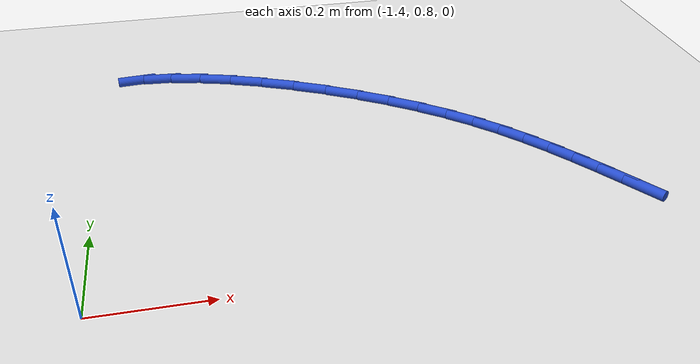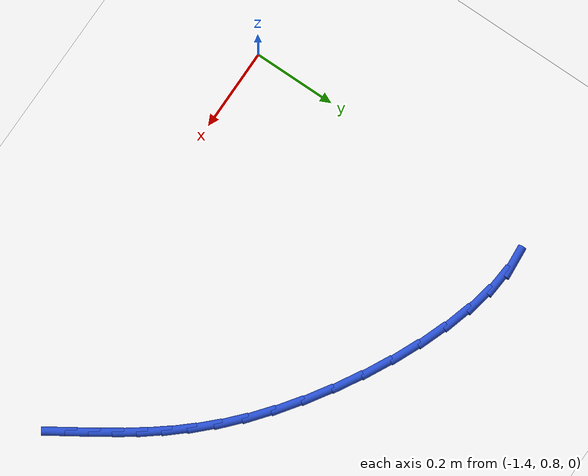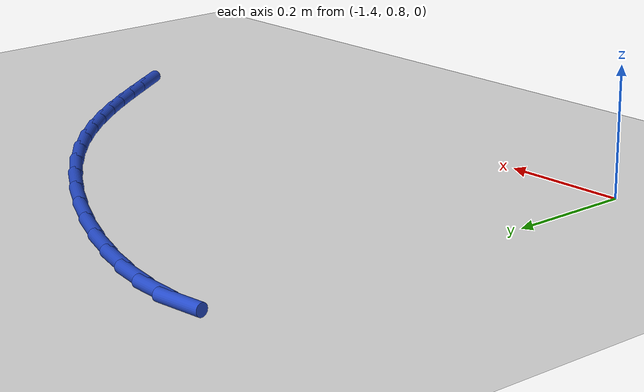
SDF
<sdf version="1.6">
 <world name="default">
  <model name="ground_plane">
   <static>1</static>
   <link name="link">
    <collision name="collision">
     <geometry><plane><normal>0 0 1</normal><size>100 100</size></plane></geometry>
     <surface><friction><ode><mu>100</mu><mu2>50</mu2></ode></friction></surface>
    </collision>
    <visual name="visual">
     <cast_shadows>0</cast_shadows>
     <geometry><plane><normal>0 0 1</normal><size>100 100</size></plane></geometry>
     <material>
      <script><uri>file://media/materials/scripts/gazebo.material</uri><name>Gazebo/WhiteGlow</name></script>
     </material>
    </visual>
   </link>
  </model>
  <model name="line">
   <link name="link_19">
    <pose>-0.44059486940551335 0.9225756538042263 0.01 0 1.57 -0.9933077386441407</pose>
    <collision name="collision">
     <geometry><cylinder><radius>0.01</radius><length>0.08</length></cylinder></geometry>
    </collision>
    <visual name="visual">
     <material>
      <script><name>Gazebo/Blue</name><uri>file://media/materials/scripts/gazebo.material</uri></script>
     </material>
     <geometry><cylinder><radius>0.01</radius><length>0.08</length></cylinder></geometry>
    </visual>
   </link>
   <link name="link_20">
    <pose>-0.46901064681831384 0.9661858983728185 0.01 0 1.57 -0.9850512075724858</pose>
    <collision name="collision">
     <geometry><cylinder><radius>0.01</radius><length>0.08</length></cylinder></geometry>
    </collision>
    <visual name="visual">
     <material>
      <script><name>Gazebo/Blue</name><uri>file://media/materials/scripts/gazebo.material</uri></script>
     </material>
     <geometry><cylinder><radius>0.01</radius><length>0.08</length></cylinder></geometry>
    </visual>
   </link>
   <link name="link_21">
    <pose>-0.4979193131147216 1.0097617166299877 0.01 0 1.57 -0.9647996219319948</pose>
    <collision name="collision">
     <geometry><cylinder><radius>0.01</radius><length>0.08</length></cylinder></geometry>
    </collision>
    <visual name="visual">
     <material>
      <script><name>Gazebo/Blue</name><uri>file://media/materials/scripts/gazebo.material</uri></script>
     </material>
     <geometry><cylinder><radius>0.01</radius><length>0.08</length></cylinder></geometry>
    </visual>
   </link>
   <link name="link_22">
    <pose>-0.5280503535728575 1.0532423195550304 0.01 0 1.57 -0.933387570112398</pose>
    <collision name="collision">
     <geometry><cylinder><radius>0.01</radius><length>0.08</length></cylinder></geometry>
    </collision>
    <visual name="visual">
     <material>
      <script><name>Gazebo/Blue</name><uri>file://media/materials/scripts/gazebo.material</uri></script>
     </material>
     <geometry><cylinder><radius>0.01</radius><length>0.08</length></cylinder></geometry>
    </visual>
   </link>
   <link name="link_23">
    <pose>-0.5601332534708434 1.0965669181272437 0.01 0 1.57 -0.8921354442786551</pose>
    <collision name="collision">
     <geometry><cylinder><radius>0.01</radius><length>0.08</length></cylinder></geometry>
    </collision>
    <visual name="visual">
     <material>
      <script><name>Gazebo/Blue</name><uri>file://media/materials/scripts/gazebo.material</uri></script>
     </material>
     <geometry><cylinder><radius>0.01</radius><length>0.08</length></cylinder></geometry>
    </visual>
   </link>
   <link name="link_24">
    <pose>-0.5948974980868004 1.1396747233259235 0.01 0 1.57 -0.8428022339938956</pose>
    <collision name="collision">
     <geometry><cylinder><radius>0.01</radius><length>0.08</length></cylinder></geometry>
    </collision>
    <visual name="visual">
     <material>
      <script><name>Gazebo/Blue</name><uri>file://media/materials/scripts/gazebo.material</uri></script>
     </material>
     <geometry><cylinder><radius>0.01</radius><length>0.08</length></cylinder></geometry>
    </visual>
   </link>
   <link name="link_25">
    <pose>-0.6330725726988508 1.1825049461303678 0.01 0 1.57 -0.7874788966688654</pose>
    <collision name="collision">
     <geometry><cylinder><radius>0.01</radius><length>0.08</length></cylinder></geometry>
    </collision>
    <visual name="visual">
     <material>
      <script><name>Gazebo/Blue</name><uri>file://media/materials/scripts/gazebo.material</uri></script>
     </material>
     <geometry><cylinder><radius>0.01</radius><length>0.08</length></cylinder></geometry>
    </visual>
   </link>
   <link name="link_26">
    <pose>-0.6753879625851154 1.2249967975198726 0.01 0 1.57 -0.7284189088602177</pose>
    <collision name="collision">
     <geometry><cylinder><radius>0.01</radius><length>0.08</length></cylinder></geometry>
    </collision>
    <visual name="visual">
     <material>
      <script><name>Gazebo/Blue</name><uri>file://media/materials/scripts/gazebo.material</uri></script>
     </material>
     <geometry><cylinder><radius>0.01</radius><length>0.08</length></cylinder></geometry>
    </visual>
   </link>
   <link name="link_27">
    <pose>-0.7225731530237162 1.2670894884737347 0.01 0 1.57 -0.6684847782224723</pose>
    <collision name="collision">
     <geometry><cylinder><radius>0.01</radius><length>0.08</length></cylinder></geometry>
    </collision>
    <visual name="visual">
     <material>
      <script><name>Gazebo/Blue</name><uri>file://media/materials/scripts/gazebo.material</uri></script>
     </material>
     <geometry><cylinder><radius>0.01</radius><length>0.08</length></cylinder></geometry>
    </visual>
   </link>
   <link name="link_28">
    <pose>-0.7752221834271208 1.3086712111539796 0.01 0 1.57 -0.6135340071690958</pose>
    <collision name="collision">
     <geometry><cylinder><radius>0.01</radius><length>0.08</length></cylinder></geometry>
    </collision>
    <visual name="visual">
     <material>
      <script><name>Gazebo/Blue</name><uri>file://media/materials/scripts/gazebo.material</uri></script>
     </material>
     <geometry><cylinder><radius>0.01</radius><length>0.08</length></cylinder></geometry>
    </visual>
   </link>
   <link name="link_29">
    <pose>-0.8327627385294791 1.3491908232629193 0.01 0 1.57 -0.5631852698814351</pose>
    <collision name="collision">
     <geometry><cylinder><radius>0.01</radius><length>0.08</length></cylinder></geometry>
    </collision>
    <visual name="visual">
     <material>
      <script><name>Gazebo/Blue</name><uri>file://media/materials/scripts/gazebo.material</uri></script>
     </material>
     <geometry><cylinder><radius>0.01</radius><length>0.08</length></cylinder></geometry>
    </visual>
   </link>
   <link name="link_30">
    <pose>-0.8940272229676131 1.3878729564892882 0.01 0 1.57 -0.514422191157868</pose>
    <collision name="collision">
     <geometry><cylinder><radius>0.01</radius><length>0.08</length></cylinder></geometry>
    </collision>
    <visual name="visual">
     <material>
      <script><name>Gazebo/Blue</name><uri>file://media/materials/scripts/gazebo.material</uri></script>
     </material>
     <geometry><cylinder><radius>0.01</radius><length>0.08</length></cylinder></geometry>
    </visual>
   </link>
   <link name="link_31">
    <pose>-0.9578432767817597 1.4239404478263444 0.01 0 1.57 -0.4646049477476544</pose>
    <collision name="collision">
     <geometry><cylinder><radius>0.01</radius><length>0.08</length></cylinder></geometry>
    </collision>
    <visual name="visual">
     <material>
      <script><name>Gazebo/Blue</name><uri>file://media/materials/scripts/gazebo.material</uri></script>
     </material>
     <geometry><cylinder><radius>0.01</radius><length>0.08</length></cylinder></geometry>
    </visual>
   </link>
   <link name="link_32">
    <pose>-1.0230385400121553 1.4566161342673443 0.01 0 1.57 -0.41104020291991156</pose>
    <collision name="collision">
     <geometry><cylinder><radius>0.01</radius><length>0.08</length></cylinder></geometry>
    </collision>
    <visual name="visual">
     <material>
      <script><name>Gazebo/Blue</name><uri>file://media/materials/scripts/gazebo.material</uri></script>
     </material>
     <geometry><cylinder><radius>0.01</radius><length>0.08</length></cylinder></geometry>
    </visual>
   </link>
   <link name="link_33">
    <pose>-1.0884406526990362 1.4851228528055453 0.01 0 1.57 -0.35053934003539816</pose>
    <collision name="collision">
     <geometry><cylinder><radius>0.01</radius><length>0.08</length></cylinder></geometry>
    </collision>
    <visual name="visual">
     <material>
      <script><name>Gazebo/Blue</name><uri>file://media/materials/scripts/gazebo.material</uri></script>
     </material>
     <geometry><cylinder><radius>0.01</radius><length>0.08</length></cylinder></geometry>
    </visual>
   </link>
   <link name="link_34">
    <pose>-1.1528772548826391 1.508683440434204 0.01 0 1.57 -0.2788583950742498</pose>
    <collision name="collision">
     <geometry><cylinder><radius>0.01</radius><length>0.08</length></cylinder></geometry>
    </collision>
    <visual name="visual">
     <material>
      <script><name>Gazebo/Blue</name><uri>file://media/materials/scripts/gazebo.material</uri></script>
     </material>
     <geometry><cylinder><radius>0.01</radius><length>0.08</length></cylinder></geometry>
    </visual>
   </link>
   <link name="link_35">
    <pose>-1.2151759866031997 1.5265207341465774 0.01 0 1.57 -0.18987212111653612</pose>
    <collision name="collision">
     <geometry><cylinder><radius>0.01</radius><length>0.08</length></cylinder></geometry>
    </collision>
    <visual name="visual">
     <material>
      <script><name>Gazebo/Blue</name><uri>file://media/materials/scripts/gazebo.material</uri></script>
     </material>
     <geometry><cylinder><radius>0.01</radius><length>0.08</length></cylinder></geometry>
    </visual>
   </link>
   <link name="link_36">
    <pose>-1.2741644879009553 1.5378575709359226 0.01 0 1.57 -0.07433574130946816</pose>
    <collision name="collision">
     <geometry><cylinder><radius>0.01</radius><length>0.08</length></cylinder></geometry>
    </collision>
    <visual name="visual">
     <material>
      <script><name>Gazebo/Blue</name><uri>file://media/materials/scripts/gazebo.material</uri></script>
     </material>
     <geometry><cylinder><radius>0.01</radius><length>0.08</length></cylinder></geometry>
    </visual>
   </link>
   <link name="link_37">
    <pose>-1.3286703988161412 1.5419167877954965 0.01 0 1.57 0.08160928326728085</pose>
    <collision name="collision">
     <geometry><cylinder><radius>0.01</radius><length>0.08</length></cylinder></geometry>
    </collision>
    <visual name="visual">
     <material>
      <script><name>Gazebo/Blue</name><uri>file://media/materials/scripts/gazebo.material</uri></script>
     </material>
     <geometry><cylinder><radius>0.01</radius><length>0.08</length></cylinder></geometry>
    </visual>
   </link>
  </model>
 </world>
</sdf>
